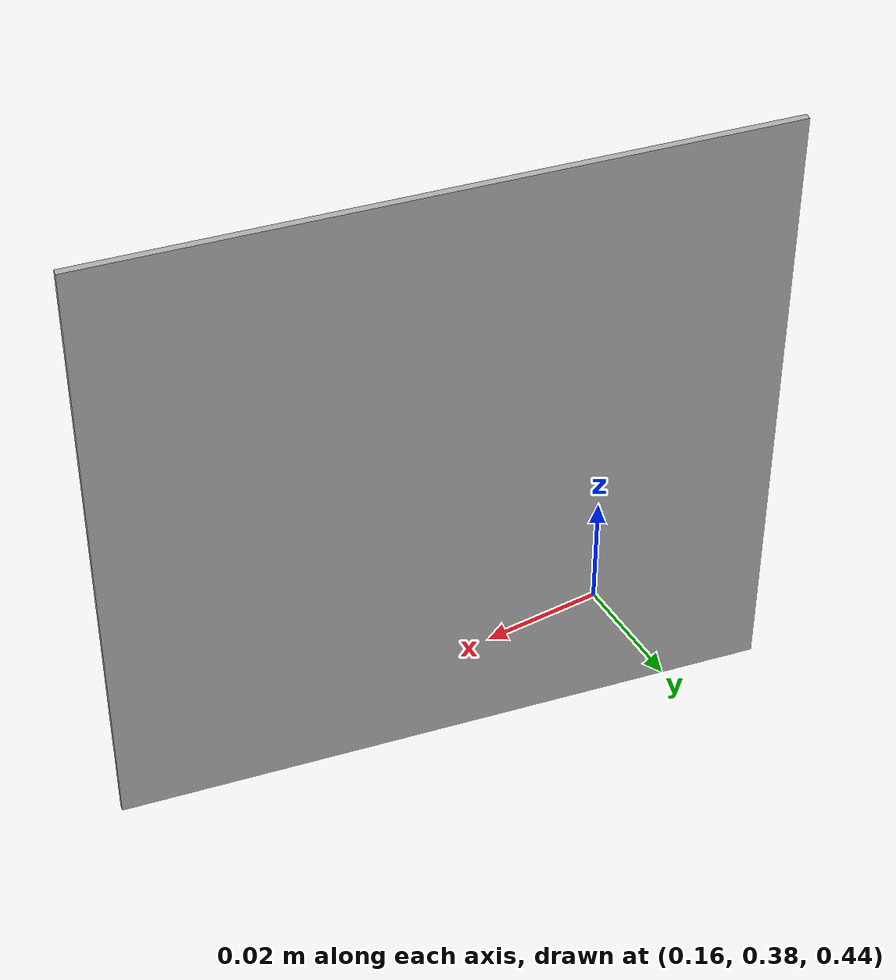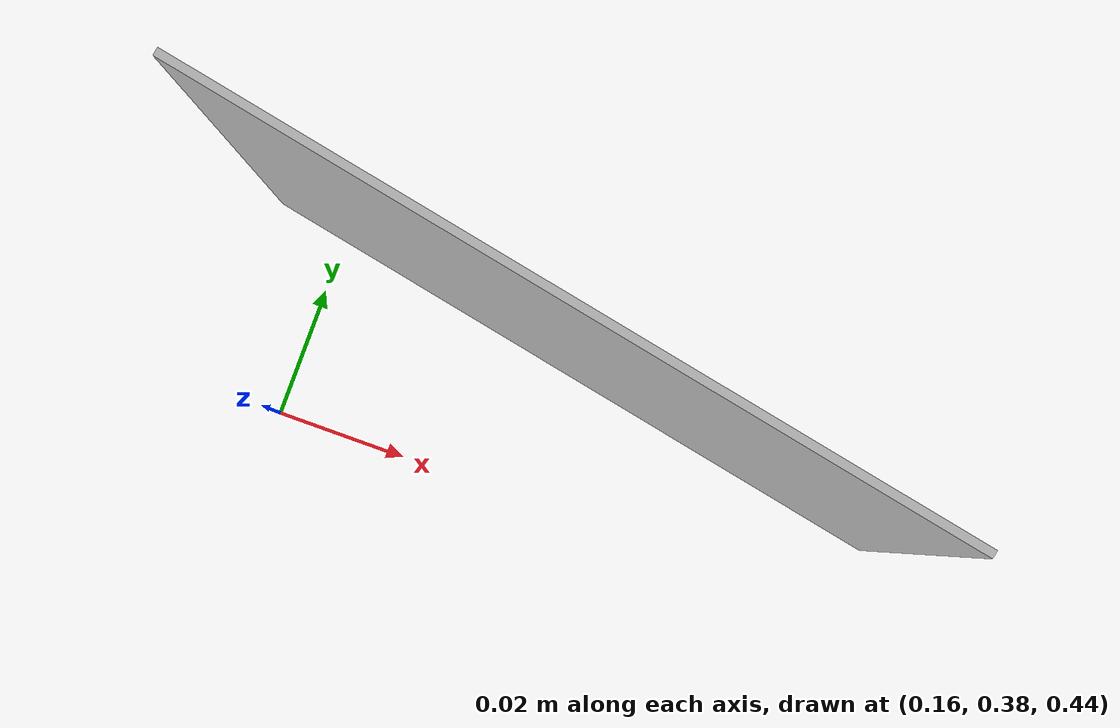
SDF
<?xml version="1.0" ?>
<sdf version="1.5">
  <world name="our_world">

    <!-- A global light source -->
    <include>
      <uri>model://sun</uri>
    </include>

    <!-- A ground plane -->
    <include>
      <uri>model://ground_plane</uri>
    </include>

    <!-- set physics for our world -->
    <physics type='ode'>
      <max_step_size>0.01</max_step_size>
      <real_time_factor>1.0</real_time_factor>
      <real_time_update_rate>100</real_time_update_rate>
      <gravity>0 0 -9.81</gravity>
    </physics>

    <!-- An apriltag -->
    <include>
      <uri>model://Tag0</uri>
      <pose>0.2 0.4 0.4 0.0 0 -0.2</pose>
    </include>

  </world>
</sdf>

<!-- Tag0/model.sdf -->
<sdf version="1.5">
  <model name="Tag0">
    <static>true</static>
    <link name="link">
      <pose>0 0 0.1 0 0 0</pose>
      <collision name="collision">
        <geometry>
          <box>
            <size>.1 0.001 .1</size>
          </box>
        </geometry>
      </collision>
      <visual name="visual">
        <cast_shadows>false</cast_shadows>
        <geometry>
          <box>
            <size>.1 0.001 .1</size>
          </box>
        </geometry>
        <material>
          <script>
            <uri>model://Tag0/materials/scripts</uri>
            <uri>model://Tag0/materials/textures</uri>
            <name>vrc/Tag0</name>
          </script>
        </material>
      </visual>
    </link>
  </model>
</sdf>
